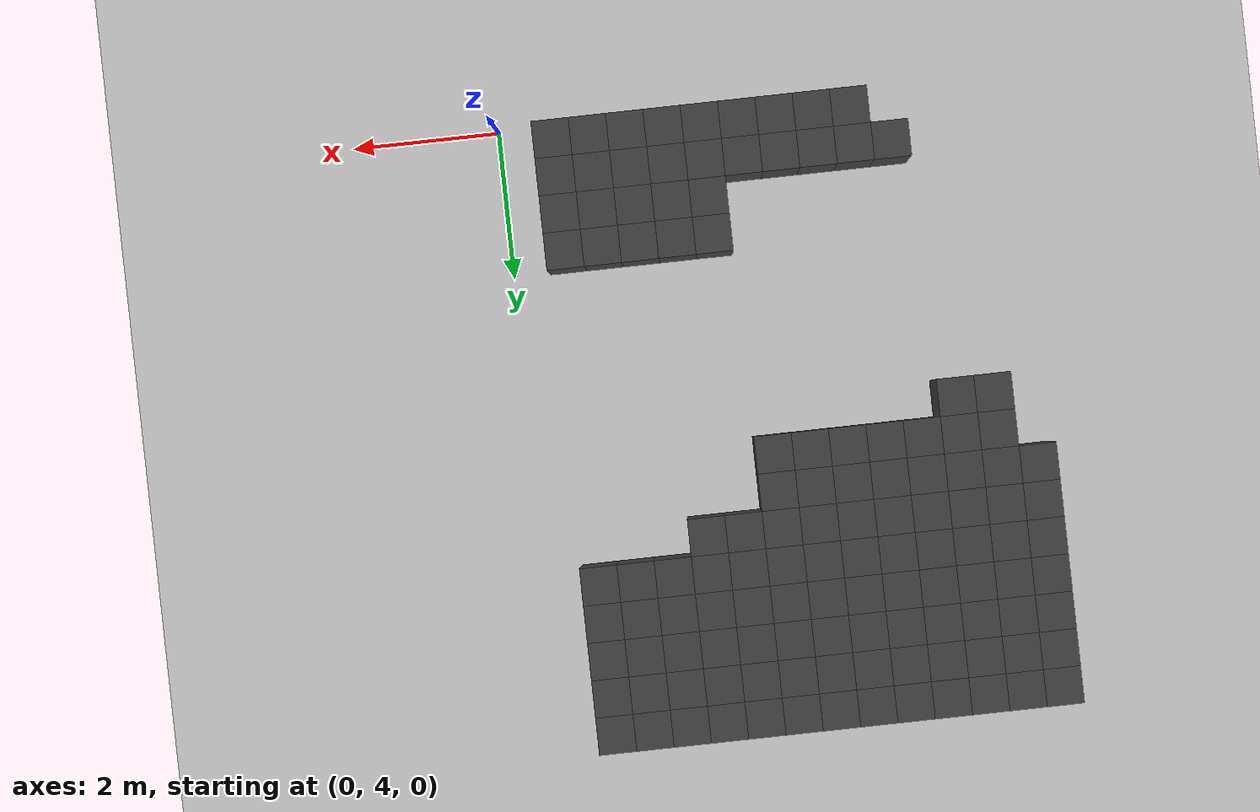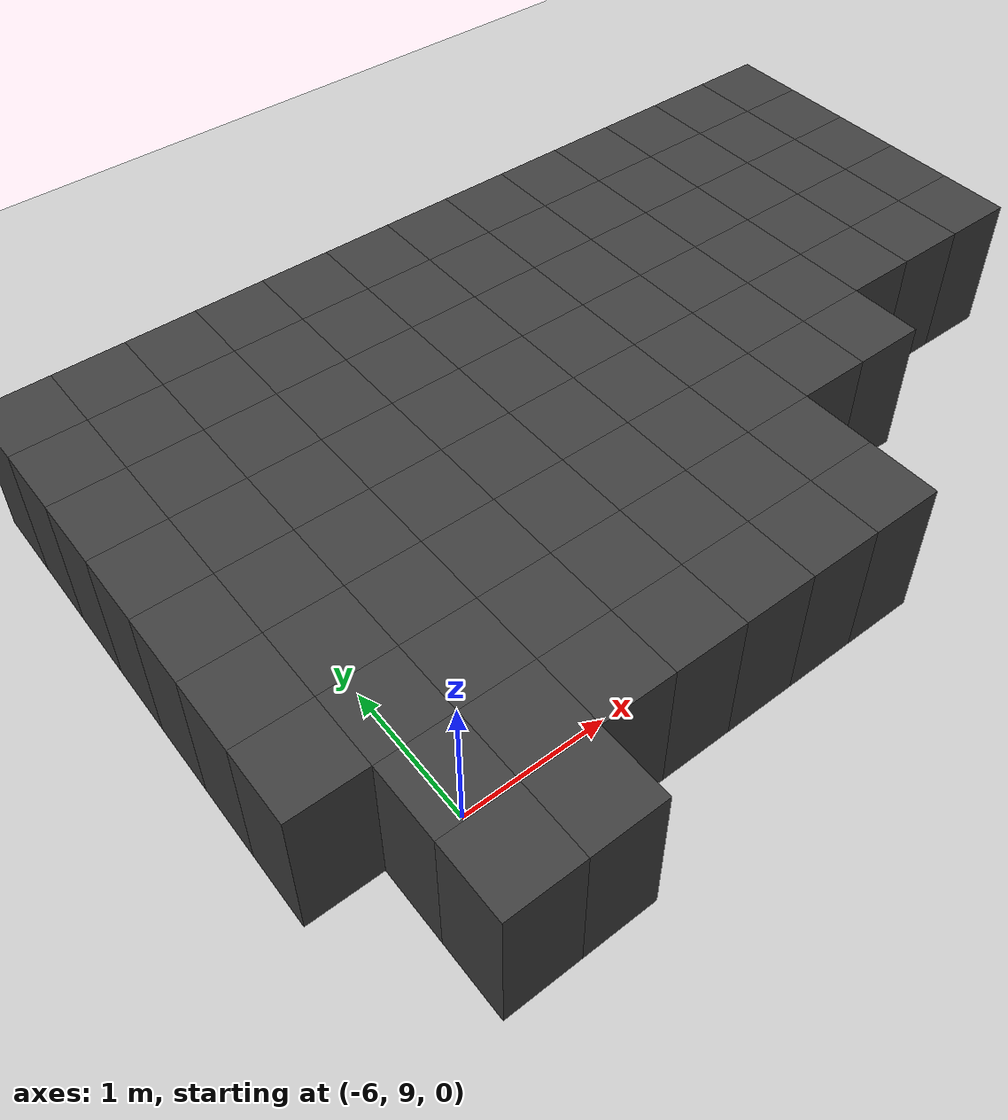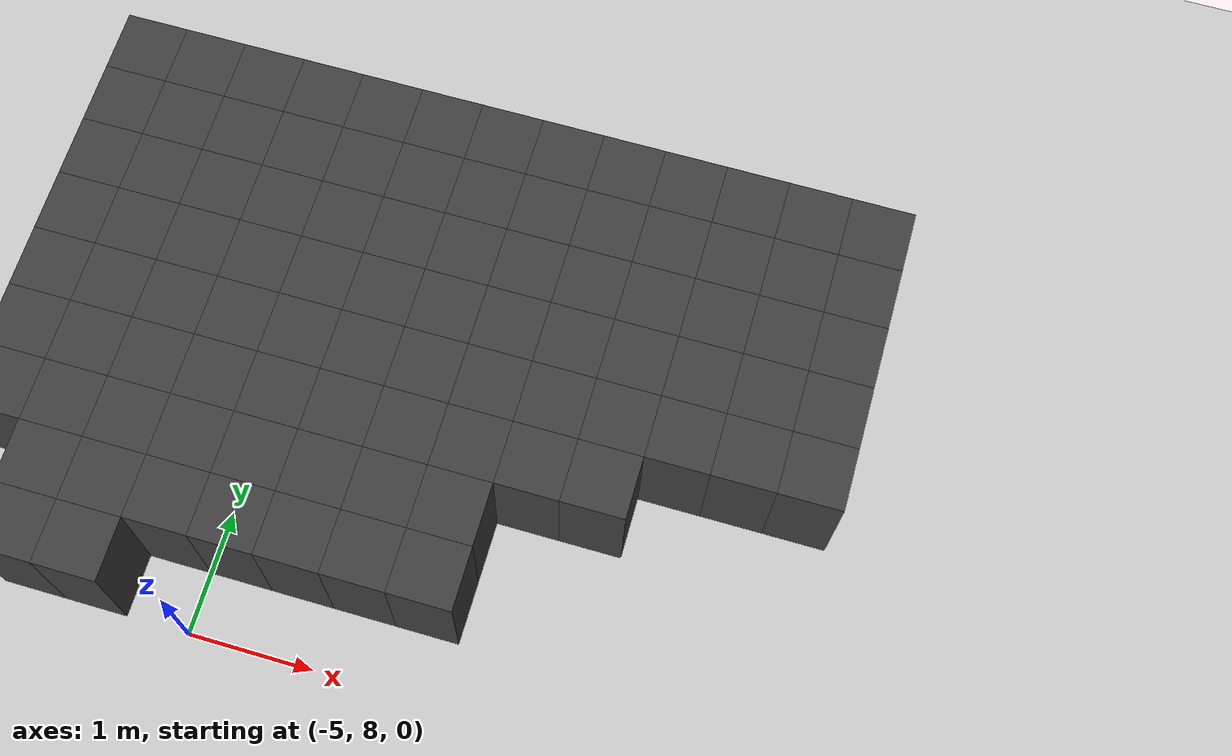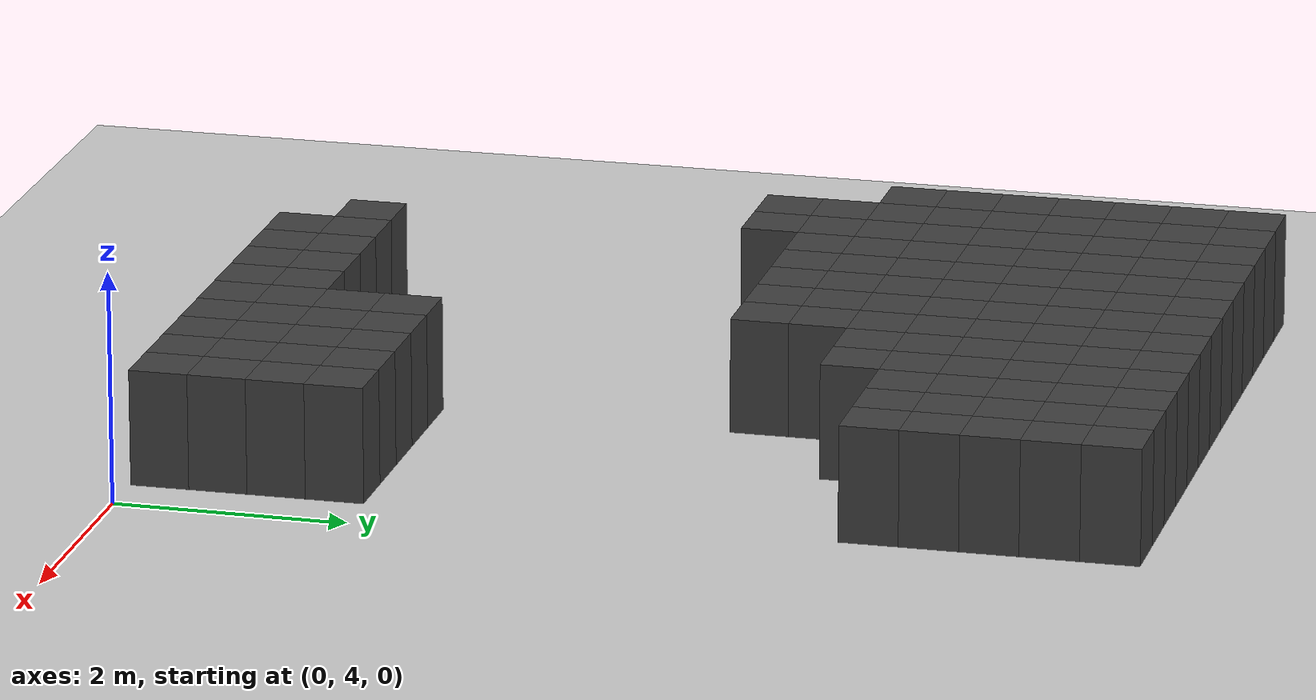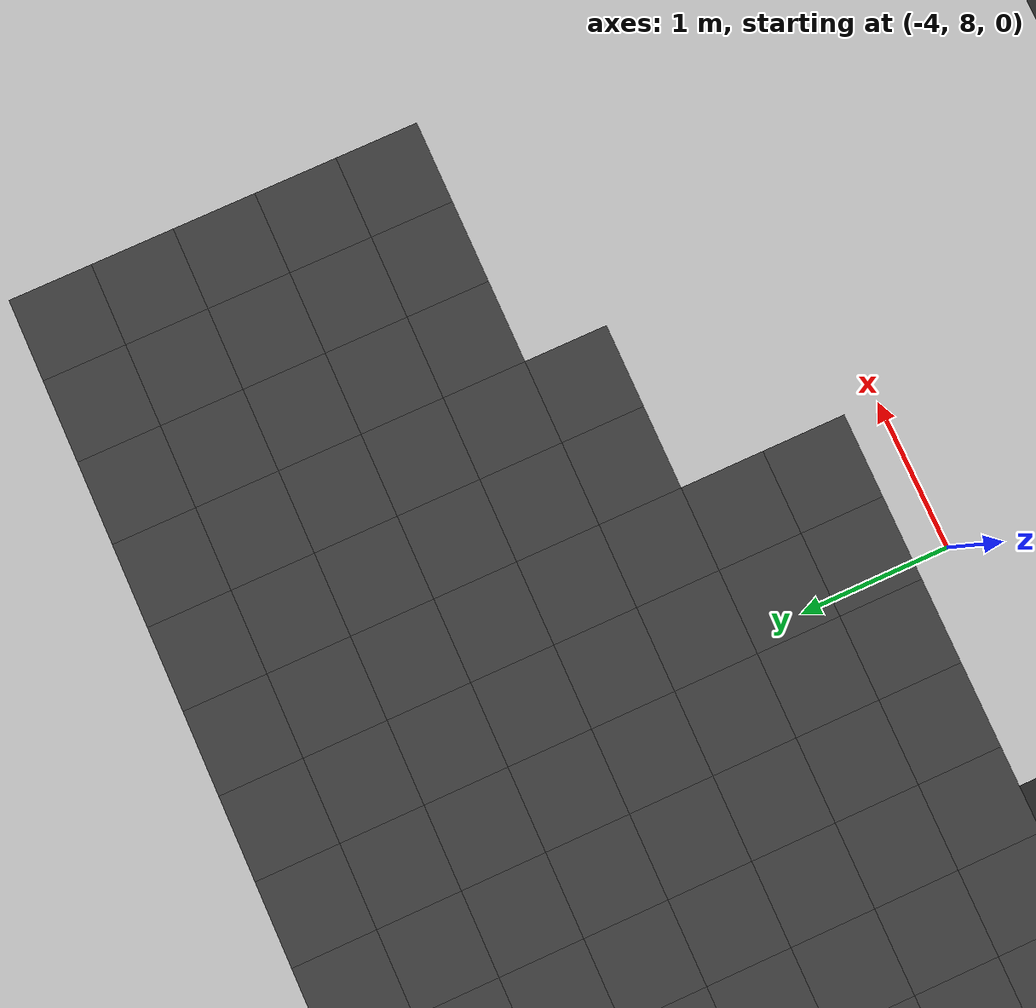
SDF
<sdf version="1.7">
 <world name="map_14706">
  <model name="ground_plane">
   <static>true</static>
   <link name="link">
    <collision name="collision">
     <geometry><plane><normal>0 0 1</normal><size>200 200</size></plane></geometry>
    </collision>
    <visual name="visual">
     <geometry><plane><normal>0 0 1</normal><size>200 200</size></plane></geometry>
     <material><ambient>0.8 0.8 0.8 1</ambient><diffuse>0.8 0.8 0.8 1</diffuse></material>
    </visual>
   </link>
  </model>
  <model name="maze_environment">
   <static>true</static>
   <link name="wall_11">
    <pose>-6.750 12.250 0.500 0 0 0</pose>
    <collision name="col"><geometry><box><size>0.5 0.5 1.0</size></box></geometry></collision>
    <visual name="vis">
     <geometry><box><size>0.5 0.5 1.0</size></box></geometry>
     <material><ambient>0.15 0.15 0.15 1</ambient><diffuse>0.25 0.25 0.25 1</diffuse></material>
    </visual>
   </link>
   <link name="wall_12">
    <pose>-6.250 12.250 0.500 0 0 0</pose>
    <collision name="col"><geometry><box><size>0.5 0.5 1.0</size></box></geometry></collision>
    <visual name="vis">
     <geometry><box><size>0.5 0.5 1.0</size></box></geometry>
     <material><ambient>0.15 0.15 0.15 1</ambient><diffuse>0.25 0.25 0.25 1</diffuse></material>
    </visual>
   </link>
   <link name="wall_13">
    <pose>-5.750 12.250 0.500 0 0 0</pose>
    <collision name="col"><geometry><box><size>0.5 0.5 1.0</size></box></geometry></collision>
    <visual name="vis">
     <geometry><box><size>0.5 0.5 1.0</size></box></geometry>
     <material><ambient>0.15 0.15 0.15 1</ambient><diffuse>0.25 0.25 0.25 1</diffuse></material>
    </visual>
   </link>
   <link name="wall_14">
    <pose>-5.250 12.250 0.500 0 0 0</pose>
    <collision name="col"><geometry><box><size>0.5 0.5 1.0</size></box></geometry></collision>
    <visual name="vis">
     <geometry><box><size>0.5 0.5 1.0</size></box></geometry>
     <material><ambient>0.15 0.15 0.15 1</ambient><diffuse>0.25 0.25 0.25 1</diffuse></material>
    </visual>
   </link>
   <link name="wall_15">
    <pose>-4.750 12.250 0.500 0 0 0</pose>
    <collision name="col"><geometry><box><size>0.5 0.5 1.0</size></box></geometry></collision>
    <visual name="vis">
     <geometry><box><size>0.5 0.5 1.0</size></box></geometry>
     <material><ambient>0.15 0.15 0.15 1</ambient><diffuse>0.25 0.25 0.25 1</diffuse></material>
    </visual>
   </link>
   <link name="wall_16">
    <pose>-4.250 12.250 0.500 0 0 0</pose>
    <collision name="col"><geometry><box><size>0.5 0.5 1.0</size></box></geometry></collision>
    <visual name="vis">
     <geometry><box><size>0.5 0.5 1.0</size></box></geometry>
     <material><ambient>0.15 0.15 0.15 1</ambient><diffuse>0.25 0.25 0.25 1</diffuse></material>
    </visual>
   </link>
   <link name="wall_17">
    <pose>-3.750 12.250 0.500 0 0 0</pose>
    <collision name="col"><geometry><box><size>0.5 0.5 1.0</size></box></geometry></collision>
    <visual name="vis">
     <geometry><box><size>0.5 0.5 1.0</size></box></geometry>
     <material><ambient>0.15 0.15 0.15 1</ambient><diffuse>0.25 0.25 0.25 1</diffuse></material>
    </visual>
   </link>
   <link name="wall_18">
    <pose>-3.250 12.250 0.500 0 0 0</pose>
    <collision name="col"><geometry><box><size>0.5 0.5 1.0</size></box></geometry></collision>
    <visual name="vis">
     <geometry><box><size>0.5 0.5 1.0</size></box></geometry>
     <material><ambient>0.15 0.15 0.15 1</ambient><diffuse>0.25 0.25 0.25 1</diffuse></material>
    </visual>
   </link>
   <link name="wall_19">
    <pose>-2.750 12.250 0.500 0 0 0</pose>
    <collision name="col"><geometry><box><size>0.5 0.5 1.0</size></box></geometry></collision>
    <visual name="vis">
     <geometry><box><size>0.5 0.5 1.0</size></box></geometry>
     <material><ambient>0.15 0.15 0.15 1</ambient><diffuse>0.25 0.25 0.25 1</diffuse></material>
    </visual>
   </link>
   <link name="wall_20">
    <pose>-2.250 12.250 0.500 0 0 0</pose>
    <collision name="col"><geometry><box><size>0.5 0.5 1.0</size></box></geometry></collision>
    <visual name="vis">
     <geometry><box><size>0.5 0.5 1.0</size></box></geometry>
     <material><ambient>0.15 0.15 0.15 1</ambient><diffuse>0.25 0.25 0.25 1</diffuse></material>
    </visual>
   </link>
   <link name="wall_21">
    <pose>-1.750 12.250 0.500 0 0 0</pose>
    <collision name="col"><geometry><box><size>0.5 0.5 1.0</size></box></geometry></collision>
    <visual name="vis">
     <geometry><box><size>0.5 0.5 1.0</size></box></geometry>
     <material><ambient>0.15 0.15 0.15 1</ambient><diffuse>0.25 0.25 0.25 1</diffuse></material>
    </visual>
   </link>
   <link name="wall_22">
    <pose>-1.250 12.250 0.500 0 0 0</pose>
    <collision name="col"><geometry><box><size>0.5 0.5 1.0</size></box></geometry></collision>
    <visual name="vis">
     <geometry><box><size>0.5 0.5 1.0</size></box></geometry>
     <material><ambient>0.15 0.15 0.15 1</ambient><diffuse>0.25 0.25 0.25 1</diffuse></material>
    </visual>
   </link>
   <link name="wall_23">
    <pose>-0.750 12.250 0.500 0 0 0</pose>
    <collision name="col"><geometry><box><size>0.5 0.5 1.0</size></box></geometry></collision>
    <visual name="vis">
     <geometry><box><size>0.5 0.5 1.0</size></box></geometry>
     <material><ambient>0.15 0.15 0.15 1</ambient><diffuse>0.25 0.25 0.25 1</diffuse></material>
    </visual>
   </link>
   <link name="wall_58">
    <pose>-6.750 11.750 0.500 0 0 0</pose>
    <collision name="col"><geometry><box><size>0.5 0.5 1.0</size></box></geometry></collision>
    <visual name="vis">
     <geometry><box><size>0.5 0.5 1.0</size></box></geometry>
     <material><ambient>0.15 0.15 0.15 1</ambient><diffuse>0.25 0.25 0.25 1</diffuse></material>
    </visual>
   </link>
   <link name="wall_59">
    <pose>-6.250 11.750 0.500 0 0 0</pose>
    <collision name="col"><geometry><box><size>0.5 0.5 1.0</size></box></geometry></collision>
    <visual name="vis">
     <geometry><box><size>0.5 0.5 1.0</size></box></geometry>
     <material><ambient>0.15 0.15 0.15 1</ambient><diffuse>0.25 0.25 0.25 1</diffuse></material>
    </visual>
   </link>
   <link name="wall_60">
    <pose>-5.750 11.750 0.500 0 0 0</pose>
    <collision name="col"><geometry><box><size>0.5 0.5 1.0</size></box></geometry></collision>
    <visual name="vis">
     <geometry><box><size>0.5 0.5 1.0</size></box></geometry>
     <material><ambient>0.15 0.15 0.15 1</ambient><diffuse>0.25 0.25 0.25 1</diffuse></material>
    </visual>
   </link>
   <link name="wall_61">
    <pose>-5.250 11.750 0.500 0 0 0</pose>
    <collision name="col"><geometry><box><size>0.5 0.5 1.0</size></box></geometry></collision>
    <visual name="vis">
     <geometry><box><size>0.5 0.5 1.0</size></box></geometry>
     <material><ambient>0.15 0.15 0.15 1</ambient><diffuse>0.25 0.25 0.25 1</diffuse></material>
    </visual>
   </link>
   <link name="wall_62">
    <pose>-4.750 11.750 0.500 0 0 0</pose>
    <collision name="col"><geometry><box><size>0.5 0.5 1.0</size></box></geometry></collision>
    <visual name="vis">
     <geometry><box><size>0.5 0.5 1.0</size></box></geometry>
     <material><ambient>0.15 0.15 0.15 1</ambient><diffuse>0.25 0.25 0.25 1</diffuse></material>
    </visual>
   </link>
   <link name="wall_63">
    <pose>-4.250 11.750 0.500 0 0 0</pose>
    <collision name="col"><geometry><box><size>0.5 0.5 1.0</size></box></geometry></collision>
    <visual name="vis">
     <geometry><box><size>0.5 0.5 1.0</size></box></geometry>
     <material><ambient>0.15 0.15 0.15 1</ambient><diffuse>0.25 0.25 0.25 1</diffuse></material>
    </visual>
   </link>
   <link name="wall_64">
    <pose>-3.750 11.750 0.500 0 0 0</pose>
    <collision name="col"><geometry><box><size>0.5 0.5 1.0</size></box></geometry></collision>
    <visual name="vis">
     <geometry><box><size>0.5 0.5 1.0</size></box></geometry>
     <material><ambient>0.15 0.15 0.15 1</ambient><diffuse>0.25 0.25 0.25 1</diffuse></material>
    </visual>
   </link>
   <link name="wall_65">
    <pose>-3.250 11.750 0.500 0 0 0</pose>
    <collision name="col"><geometry><box><size>0.5 0.5 1.0</size></box></geometry></collision>
    <visual name="vis">
     <geometry><box><size>0.5 0.5 1.0</size></box></geometry>
     <material><ambient>0.15 0.15 0.15 1</ambient><diffuse>0.25 0.25 0.25 1</diffuse></material>
    </visual>
   </link>
   <link name="wall_66">
    <pose>-2.750 11.750 0.500 0 0 0</pose>
    <collision name="col"><geometry><box><size>0.5 0.5 1.0</size></box></geometry></collision>
    <visual name="vis">
     <geometry><box><size>0.5 0.5 1.0</size></box></geometry>
     <material><ambient>0.15 0.15 0.15 1</ambient><diffuse>0.25 0.25 0.25 1</diffuse></material>
    </visual>
   </link>
   <link name="wall_67">
    <pose>-2.250 11.750 0.500 0 0 0</pose>
    <collision name="col"><geometry><box><size>0.5 0.5 1.0</size></box></geometry></collision>
    <visual name="vis">
     <geometry><box><size>0.5 0.5 1.0</size></box></geometry>
     <material><ambient>0.15 0.15 0.15 1</ambient><diffuse>0.25 0.25 0.25 1</diffuse></material>
    </visual>
   </link>
   <link name="wall_68">
    <pose>-1.750 11.750 0.500 0 0 0</pose>
    <collision name="col"><geometry><box><size>0.5 0.5 1.0</size></box></geometry></collision>
    <visual name="vis">
     <geometry><box><size>0.5 0.5 1.0</size></box></geometry>
     <material><ambient>0.15 0.15 0.15 1</ambient><diffuse>0.25 0.25 0.25 1</diffuse></material>
    </visual>
   </link>
   <link name="wall_69">
    <pose>-1.250 11.750 0.500 0 0 0</pose>
    <collision name="col"><geometry><box><size>0.5 0.5 1.0</size></box></geometry></collision>
    <visual name="vis">
     <geometry><box><size>0.5 0.5 1.0</size></box></geometry>
     <material><ambient>0.15 0.15 0.15 1</ambient><diffuse>0.25 0.25 0.25 1</diffuse></material>
    </visual>
   </link>
   <link name="wall_70">
    <pose>-0.750 11.750 0.500 0 0 0</pose>
    <collision name="col"><geometry><box><size>0.5 0.5 1.0</size></box></geometry></collision>
    <visual name="vis">
     <geometry><box><size>0.5 0.5 1.0</size></box></geometry>
     <material><ambient>0.15 0.15 0.15 1</ambient><diffuse>0.25 0.25 0.25 1</diffuse></material>
    </visual>
   </link>
   <link name="wall_97">
    <pose>-6.750 11.250 0.500 0 0 0</pose>
    <collision name="col"><geometry><box><size>0.5 0.5 1.0</size></box></geometry></collision>
    <visual name="vis">
     <geometry><box><size>0.5 0.5 1.0</size></box></geometry>
     <material><ambient>0.15 0.15 0.15 1</ambient><diffuse>0.25 0.25 0.25 1</diffuse></material>
    </visual>
   </link>
   <link name="wall_98">
    <pose>-6.250 11.250 0.500 0 0 0</pose>
    <collision name="col"><geometry><box><size>0.5 0.5 1.0</size></box></geometry></collision>
    <visual name="vis">
     <geometry><box><size>0.5 0.5 1.0</size></box></geometry>
     <material><ambient>0.15 0.15 0.15 1</ambient><diffuse>0.25 0.25 0.25 1</diffuse></material>
    </visual>
   </link>
   <link name="wall_99">
    <pose>-5.750 11.250 0.500 0 0 0</pose>
    <collision name="col"><geometry><box><size>0.5 0.5 1.0</size></box></geometry></collision>
    <visual name="vis">
     <geometry><box><size>0.5 0.5 1.0</size></box></geometry>
     <material><ambient>0.15 0.15 0.15 1</ambient><diffuse>0.25 0.25 0.25 1</diffuse></material>
    </visual>
   </link>
   <link name="wall_100">
    <pose>-5.250 11.250 0.500 0 0 0</pose>
    <collision name="col"><geometry><box><size>0.5 0.5 1.0</size></box></geometry></collision>
    <visual name="vis">
     <geometry><box><size>0.5 0.5 1.0</size></box></geometry>
     <material><ambient>0.15 0.15 0.15 1</ambient><diffuse>0.25 0.25 0.25 1</diffuse></material>
    </visual>
   </link>
   <link name="wall_101">
    <pose>-4.750 11.250 0.500 0 0 0</pose>
    <collision name="col"><geometry><box><size>0.5 0.5 1.0</size></box></geometry></collision>
    <visual name="vis">
     <geometry><box><size>0.5 0.5 1.0</size></box></geometry>
     <material><ambient>0.15 0.15 0.15 1</ambient><diffuse>0.25 0.25 0.25 1</diffuse></material>
    </visual>
   </link>
   <link name="wall_102">
    <pose>-4.250 11.250 0.500 0 0 0</pose>
    <collision name="col"><geometry><box><size>0.5 0.5 1.0</size></box></geometry></collision>
    <visual name="vis">
     <geometry><box><size>0.5 0.5 1.0</size></box></geometry>
     <material><ambient>0.15 0.15 0.15 1</ambient><diffuse>0.25 0.25 0.25 1</diffuse></material>
    </visual>
   </link>
   <link name="wall_103">
    <pose>-3.750 11.250 0.500 0 0 0</pose>
    <collision name="col"><geometry><box><size>0.5 0.5 1.0</size></box></geometry></collision>
    <visual name="vis">
     <geometry><box><size>0.5 0.5 1.0</size></box></geometry>
     <material><ambient>0.15 0.15 0.15 1</ambient><diffuse>0.25 0.25 0.25 1</diffuse></material>
    </visual>
   </link>
   <link name="wall_104">
    <pose>-3.250 11.250 0.500 0 0 0</pose>
    <collision name="col"><geometry><box><size>0.5 0.5 1.0</size></box></geometry></collision>
    <visual name="vis">
     <geometry><box><size>0.5 0.5 1.0</size></box></geometry>
     <material><ambient>0.15 0.15 0.15 1</ambient><diffuse>0.25 0.25 0.25 1</diffuse></material>
    </visual>
   </link>
   <link name="wall_105">
    <pose>-2.750 11.250 0.500 0 0 0</pose>
    <collision name="col"><geometry><box><size>0.5 0.5 1.0</size></box></geometry></collision>
    <visual name="vis">
     <geometry><box><size>0.5 0.5 1.0</size></box></geometry>
     <material><ambient>0.15 0.15 0.15 1</ambient><diffuse>0.25 0.25 0.25 1</diffuse></material>
    </visual>
   </link>
   <link name="wall_106">
    <pose>-2.250 11.250 0.500 0 0 0</pose>
    <collision name="col"><geometry><box><size>0.5 0.5 1.0</size></box></geometry></collision>
    <visual name="vis">
     <geometry><box><size>0.5 0.5 1.0</size></box></geometry>
     <material><ambient>0.15 0.15 0.15 1</ambient><diffuse>0.25 0.25 0.25 1</diffuse></material>
    </visual>
   </link>
   <link name="wall_107">
    <pose>-1.750 11.250 0.500 0 0 0</pose>
    <collision name="col"><geometry><box><size>0.5 0.5 1.0</size></box></geometry></collision>
    <visual name="vis">
     <geometry><box><size>0.5 0.5 1.0</size></box></geometry>
     <material><ambient>0.15 0.15 0.15 1</ambient><diffuse>0.25 0.25 0.25 1</diffuse></material>
    </visual>
   </link>
   <link name="wall_108">
    <pose>-1.250 11.250 0.500 0 0 0</pose>
    <collision name="col"><geometry><box><size>0.5 0.5 1.0</size></box></geometry></collision>
    <visual name="vis">
     <geometry><box><size>0.5 0.5 1.0</size></box></geometry>
     <material><ambient>0.15 0.15 0.15 1</ambient><diffuse>0.25 0.25 0.25 1</diffuse></material>
    </visual>
   </link>
   <link name="wall_109">
    <pose>-0.750 11.250 0.500 0 0 0</pose>
    <collision name="col"><geometry><box><size>0.5 0.5 1.0</size></box></geometry></collision>
    <visual name="vis">
     <geometry><box><size>0.5 0.5 1.0</size></box></geometry>
     <material><ambient>0.15 0.15 0.15 1</ambient><diffuse>0.25 0.25 0.25 1</diffuse></material>
    </visual>
   </link>
   <link name="wall_136">
    <pose>-6.750 10.750 0.500 0 0 0</pose>
    <collision name="col"><geometry><box><size>0.5 0.5 1.0</size></box></geometry></collision>
    <visual name="vis">
     <geometry><box><size>0.5 0.5 1.0</size></box></geometry>
     <material><ambient>0.15 0.15 0.15 1</ambient><diffuse>0.25 0.25 0.25 1</diffuse></material>
    </visual>
   </link>
   <link name="wall_137">
    <pose>-6.250 10.750 0.500 0 0 0</pose>
    <collision name="col"><geometry><box><size>0.5 0.5 1.0</size></box></geometry></collision>
    <visual name="vis">
     <geometry><box><size>0.5 0.5 1.0</size></box></geometry>
     <material><ambient>0.15 0.15 0.15 1</ambient><diffuse>0.25 0.25 0.25 1</diffuse></material>
    </visual>
   </link>
   <link name="wall_138">
    <pose>-5.750 10.750 0.500 0 0 0</pose>
    <collision name="col"><geometry><box><size>0.5 0.5 1.0</size></box></geometry></collision>
    <visual name="vis">
     <geometry><box><size>0.5 0.5 1.0</size></box></geometry>
     <material><ambient>0.15 0.15 0.15 1</ambient><diffuse>0.25 0.25 0.25 1</diffuse></material>
    </visual>
   </link>
   <link name="wall_139">
    <pose>-5.250 10.750 0.500 0 0 0</pose>
    <collision name="col"><geometry><box><size>0.5 0.5 1.0</size></box></geometry></collision>
    <visual name="vis">
     <geometry><box><size>0.5 0.5 1.0</size></box></geometry>
     <material><ambient>0.15 0.15 0.15 1</ambient><diffuse>0.25 0.25 0.25 1</diffuse></material>
    </visual>
   </link>
   <link name="wall_140">
    <pose>-4.750 10.750 0.500 0 0 0</pose>
    <collision name="col"><geometry><box><size>0.5 0.5 1.0</size></box></geometry></collision>
    <visual name="vis">
     <geometry><box><size>0.5 0.5 1.0</size></box></geometry>
     <material><ambient>0.15 0.15 0.15 1</ambient><diffuse>0.25 0.25 0.25 1</diffuse></material>
    </visual>
   </link>
   <link name="wall_141">
    <pose>-4.250 10.750 0.500 0 0 0</pose>
    <collision name="col"><geometry><box><size>0.5 0.5 1.0</size></box></geometry></collision>
    <visual name="vis">
     <geometry><box><size>0.5 0.5 1.0</size></box></geometry>
     <material><ambient>0.15 0.15 0.15 1</ambient><diffuse>0.25 0.25 0.25 1</diffuse></material>
    </visual>
   </link>
   <link name="wall_142">
    <pose>-3.750 10.750 0.500 0 0 0</pose>
    <collision name="col"><geometry><box><size>0.5 0.5 1.0</size></box></geometry></collision>
    <visual name="vis">
     <geometry><box><size>0.5 0.5 1.0</size></box></geometry>
     <material><ambient>0.15 0.15 0.15 1</ambient><diffuse>0.25 0.25 0.25 1</diffuse></material>
    </visual>
   </link>
   <link name="wall_143">
    <pose>-3.250 10.750 0.500 0 0 0</pose>
    <collision name="col"><geometry><box><size>0.5 0.5 1.0</size></box></geometry></collision>
    <visual name="vis">
     <geometry><box><size>0.5 0.5 1.0</size></box></geometry>
     <material><ambient>0.15 0.15 0.15 1</ambient><diffuse>0.25 0.25 0.25 1</diffuse></material>
    </visual>
   </link>
   <link name="wall_144">
    <pose>-2.750 10.750 0.500 0 0 0</pose>
    <collision name="col"><geometry><box><size>0.5 0.5 1.0</size></box></geometry></collision>
    <visual name="vis">
     <geometry><box><size>0.5 0.5 1.0</size></box></geometry>
     <material><ambient>0.15 0.15 0.15 1</ambient><diffuse>0.25 0.25 0.25 1</diffuse></material>
    </visual>
   </link>
   <link name="wall_145">
    <pose>-2.250 10.750 0.500 0 0 0</pose>
    <collision name="col"><geometry><box><size>0.5 0.5 1.0</size></box></geometry></collision>
    <visual name="vis">
     <geometry><box><size>0.5 0.5 1.0</size></box></geometry>
     <material><ambient>0.15 0.15 0.15 1</ambient><diffuse>0.25 0.25 0.25 1</diffuse></material>
    </visual>
   </link>
   <link name="wall_146">
    <pose>-1.750 10.750 0.500 0 0 0</pose>
    <collision name="col"><geometry><box><size>0.5 0.5 1.0</size></box></geometry></collision>
    <visual name="vis">
     <geometry><box><size>0.5 0.5 1.0</size></box></geometry>
     <material><ambient>0.15 0.15 0.15 1</ambient><diffuse>0.25 0.25 0.25 1</diffuse></material>
    </visual>
   </link>
   <link name="wall_147">
    <pose>-1.250 10.750 0.500 0 0 0</pose>
    <collision name="col"><geometry><box><size>0.5 0.5 1.0</size></box></geometry></collision>
    <visual name="vis">
     <geometry><box><size>0.5 0.5 1.0</size></box></geometry>
     <material><ambient>0.15 0.15 0.15 1</ambient><diffuse>0.25 0.25 0.25 1</diffuse></material>
    </visual>
   </link>
   <link name="wall_148">
    <pose>-0.750 10.750 0.500 0 0 0</pose>
    <collision name="col"><geometry><box><size>0.5 0.5 1.0</size></box></geometry></collision>
    <visual name="vis">
     <geometry><box><size>0.5 0.5 1.0</size></box></geometry>
     <material><ambient>0.15 0.15 0.15 1</ambient><diffuse>0.25 0.25 0.25 1</diffuse></material>
    </visual>
   </link>
   <link name="wall_167">
    <pose>-6.750 10.250 0.500 0 0 0</pose>
    <collision name="col"><geometry><box><size>0.5 0.5 1.0</size></box></geometry></collision>
    <visual name="vis">
     <geometry><box><size>0.5 0.5 1.0</size></box></geometry>
     <material><ambient>0.15 0.15 0.15 1</ambient><diffuse>0.25 0.25 0.25 1</diffuse></material>
    </visual>
   </link>
   <link name="wall_168">
    <pose>-6.250 10.250 0.500 0 0 0</pose>
    <collision name="col"><geometry><box><size>0.5 0.5 1.0</size></box></geometry></collision>
    <visual name="vis">
     <geometry><box><size>0.5 0.5 1.0</size></box></geometry>
     <material><ambient>0.15 0.15 0.15 1</ambient><diffuse>0.25 0.25 0.25 1</diffuse></material>
    </visual>
   </link>
   <link name="wall_169">
    <pose>-5.750 10.250 0.500 0 0 0</pose>
    <collision name="col"><geometry><box><size>0.5 0.5 1.0</size></box></geometry></collision>
    <visual name="vis">
     <geometry><box><size>0.5 0.5 1.0</size></box></geometry>
     <material><ambient>0.15 0.15 0.15 1</ambient><diffuse>0.25 0.25 0.25 1</diffuse></material>
    </visual>
   </link>
   <link name="wall_170">
    <pose>-5.250 10.250 0.500 0 0 0</pose>
    <collision name="col"><geometry><box><size>0.5 0.5 1.0</size></box></geometry></collision>
    <visual name="vis">
     <geometry><box><size>0.5 0.5 1.0</size></box></geometry>
     <material><ambient>0.15 0.15 0.15 1</ambient><diffuse>0.25 0.25 0.25 1</diffuse></material>
    </visual>
   </link>
   <link name="wall_171">
    <pose>-4.750 10.250 0.500 0 0 0</pose>
    <collision name="col"><geometry><box><size>0.5 0.5 1.0</size></box></geometry></collision>
    <visual name="vis">
     <geometry><box><size>0.5 0.5 1.0</size></box></geometry>
     <material><ambient>0.15 0.15 0.15 1</ambient><diffuse>0.25 0.25 0.25 1</diffuse></material>
    </visual>
   </link>
   <link name="wall_172">
    <pose>-4.250 10.250 0.500 0 0 0</pose>
    <collision name="col"><geometry><box><size>0.5 0.5 1.0</size></box></geometry></collision>
    <visual name="vis">
     <geometry><box><size>0.5 0.5 1.0</size></box></geometry>
     <material><ambient>0.15 0.15 0.15 1</ambient><diffuse>0.25 0.25 0.25 1</diffuse></material>
    </visual>
   </link>
   <link name="wall_173">
    <pose>-3.750 10.250 0.500 0 0 0</pose>
    <collision name="col"><geometry><box><size>0.5 0.5 1.0</size></box></geometry></collision>
    <visual name="vis">
     <geometry><box><size>0.5 0.5 1.0</size></box></geometry>
     <material><ambient>0.15 0.15 0.15 1</ambient><diffuse>0.25 0.25 0.25 1</diffuse></material>
    </visual>
   </link>
   <link name="wall_174">
    <pose>-3.250 10.250 0.500 0 0 0</pose>
    <collision name="col"><geometry><box><size>0.5 0.5 1.0</size></box></geometry></collision>
    <visual name="vis">
     <geometry><box><size>0.5 0.5 1.0</size></box></geometry>
     <material><ambient>0.15 0.15 0.15 1</ambient><diffuse>0.25 0.25 0.25 1</diffuse></material>
    </visual>
   </link>
   <link name="wall_175">
    <pose>-2.750 10.250 0.500 0 0 0</pose>
    <collision name="col"><geometry><box><size>0.5 0.5 1.0</size></box></geometry></collision>
    <visual name="vis">
     <geometry><box><size>0.5 0.5 1.0</size></box></geometry>
     <material><ambient>0.15 0.15 0.15 1</ambient><diffuse>0.25 0.25 0.25 1</diffuse></material>
    </visual>
   </link>
   <link name="wall_176">
    <pose>-2.250 10.250 0.500 0 0 0</pose>
    <collision name="col"><geometry><box><size>0.5 0.5 1.0</size></box></geometry></collision>
    <visual name="vis">
     <geometry><box><size>0.5 0.5 1.0</size></box></geometry>
     <material><ambient>0.15 0.15 0.15 1</ambient><diffuse>0.25 0.25 0.25 1</diffuse></material>
    </visual>
   </link>
   <link name="wall_177">
    <pose>-1.750 10.250 0.500 0 0 0</pose>
    <collision name="col"><geometry><box><size>0.5 0.5 1.0</size></box></geometry></collision>
    <visual name="vis">
     <geometry><box><size>0.5 0.5 1.0</size></box></geometry>
     <material><ambient>0.15 0.15 0.15 1</ambient><diffuse>0.25 0.25 0.25 1</diffuse></material>
    </visual>
   </link>
   <link name="wall_178">
    <pose>-1.250 10.250 0.500 0 0 0</pose>
    <collision name="col"><geometry><box><size>0.5 0.5 1.0</size></box></geometry></collision>
    <visual name="vis">
     <geometry><box><size>0.5 0.5 1.0</size></box></geometry>
     <material><ambient>0.15 0.15 0.15 1</ambient><diffuse>0.25 0.25 0.25 1</diffuse></material>
    </visual>
   </link>
   <link name="wall_179">
    <pose>-0.750 10.250 0.500 0 0 0</pose>
    <collision name="col"><geometry><box><size>0.5 0.5 1.0</size></box></geometry></collision>
    <visual name="vis">
     <geometry><box><size>0.5 0.5 1.0</size></box></geometry>
     <material><ambient>0.15 0.15 0.15 1</ambient><diffuse>0.25 0.25 0.25 1</diffuse></material>
    </visual>
   </link>
   <link name="wall_195">
    <pose>-6.750 9.750 0.500 0 0 0</pose>
    <collision name="col"><geometry><box><size>0.5 0.5 1.0</size></box></geometry></collision>
    <visual name="vis">
     <geometry><box><size>0.5 0.5 1.0</size></box></geometry>
     <material><ambient>0.15 0.15 0.15 1</ambient><diffuse>0.25 0.25 0.25 1</diffuse></material>
    </visual>
   </link>
   <link name="wall_196">
    <pose>-6.250 9.750 0.500 0 0 0</pose>
    <collision name="col"><geometry><box><size>0.5 0.5 1.0</size></box></geometry></collision>
    <visual name="vis">
     <geometry><box><size>0.5 0.5 1.0</size></box></geometry>
     <material><ambient>0.15 0.15 0.15 1</ambient><diffuse>0.25 0.25 0.25 1</diffuse></material>
    </visual>
   </link>
   <link name="wall_197">
    <pose>-5.750 9.750 0.500 0 0 0</pose>
    <collision name="col"><geometry><box><size>0.5 0.5 1.0</size></box></geometry></collision>
    <visual name="vis">
     <geometry><box><size>0.5 0.5 1.0</size></box></geometry>
     <material><ambient>0.15 0.15 0.15 1</ambient><diffuse>0.25 0.25 0.25 1</diffuse></material>
    </visual>
   </link>
   <link name="wall_198">
    <pose>-5.250 9.750 0.500 0 0 0</pose>
    <collision name="col"><geometry><box><size>0.5 0.5 1.0</size></box></geometry></collision>
    <visual name="vis">
     <geometry><box><size>0.5 0.5 1.0</size></box></geometry>
     <material><ambient>0.15 0.15 0.15 1</ambient><diffuse>0.25 0.25 0.25 1</diffuse></material>
    </visual>
   </link>
   <link name="wall_199">
    <pose>-4.750 9.750 0.500 0 0 0</pose>
    <collision name="col"><geometry><box><size>0.5 0.5 1.0</size></box></geometry></collision>
    <visual name="vis">
     <geometry><box><size>0.5 0.5 1.0</size></box></geometry>
     <material><ambient>0.15 0.15 0.15 1</ambient><diffuse>0.25 0.25 0.25 1</diffuse></material>
    </visual>
   </link>
   <link name="wall_200">
    <pose>-4.250 9.750 0.500 0 0 0</pose>
    <collision name="col"><geometry><box><size>0.5 0.5 1.0</size></box></geometry></collision>
    <visual name="vis">
     <geometry><box><size>0.5 0.5 1.0</size></box></geometry>
     <material><ambient>0.15 0.15 0.15 1</ambient><diffuse>0.25 0.25 0.25 1</diffuse></material>
    </visual>
   </link>
   <link name="wall_201">
    <pose>-3.750 9.750 0.500 0 0 0</pose>
    <collision name="col"><geometry><box><size>0.5 0.5 1.0</size></box></geometry></collision>
    <visual name="vis">
     <geometry><box><size>0.5 0.5 1.0</size></box></geometry>
     <material><ambient>0.15 0.15 0.15 1</ambient><diffuse>0.25 0.25 0.25 1</diffuse></material>
    </visual>
   </link>
   <link name="wall_202">
    <pose>-3.250 9.750 0.500 0 0 0</pose>
    <collision name="col"><geometry><box><size>0.5 0.5 1.0</size></box></geometry></collision>
    <visual name="vis">
     <geometry><box><size>0.5 0.5 1.0</size></box></geometry>
     <material><ambient>0.15 0.15 0.15 1</ambient><diffuse>0.25 0.25 0.25 1</diffuse></material>
    </visual>
   </link>
   <link name="wall_203">
    <pose>-2.750 9.750 0.500 0 0 0</pose>
    <collision name="col"><geometry><box><size>0.5 0.5 1.0</size></box></geometry></collision>
    <visual name="vis">
     <geometry><box><size>0.5 0.5 1.0</size></box></geometry>
     <material><ambient>0.15 0.15 0.15 1</ambient><diffuse>0.25 0.25 0.25 1</diffuse></material>
    </visual>
   </link>
   <link name="wall_204">
    <pose>-2.250 9.750 0.500 0 0 0</pose>
    <collision name="col"><geometry><box><size>0.5 0.5 1.0</size></box></geometry></collision>
    <visual name="vis">
     <geometry><box><size>0.5 0.5 1.0</size></box></geometry>
     <material><ambient>0.15 0.15 0.15 1</ambient><diffuse>0.25 0.25 0.25 1</diffuse></material>
    </visual>
   </link>
   <link name="wall_220">
    <pose>-6.750 9.250 0.500 0 0 0</pose>
    <collision name="col"><geometry><box><size>0.5 0.5 1.0</size></box></geometry></collision>
    <visual name="vis">
     <geometry><box><size>0.5 0.5 1.0</size></box></geometry>
     <material><ambient>0.15 0.15 0.15 1</ambient><diffuse>0.25 0.25 0.25 1</diffuse></material>
    </visual>
   </link>
   <link name="wall_221">
    <pose>-6.250 9.250 0.500 0 0 0</pose>
    <collision name="col"><geometry><box><size>0.5 0.5 1.0</size></box></geometry></collision>
    <visual name="vis">
     <geometry><box><size>0.5 0.5 1.0</size></box></geometry>
     <material><ambient>0.15 0.15 0.15 1</ambient><diffuse>0.25 0.25 0.25 1</diffuse></material>
    </visual>
   </link>
   <link name="wall_222">
    <pose>-5.750 9.250 0.500 0 0 0</pose>
    <collision name="col"><geometry><box><size>0.5 0.5 1.0</size></box></geometry></collision>
    <visual name="vis">
     <geometry><box><size>0.5 0.5 1.0</size></box></geometry>
     <material><ambient>0.15 0.15 0.15 1</ambient><diffuse>0.25 0.25 0.25 1</diffuse></material>
    </visual>
   </link>
   <link name="wall_223">
    <pose>-5.250 9.250 0.500 0 0 0</pose>
    <collision name="col"><geometry><box><size>0.5 0.5 1.0</size></box></geometry></collision>
    <visual name="vis">
     <geometry><box><size>0.5 0.5 1.0</size></box></geometry>
     <material><ambient>0.15 0.15 0.15 1</ambient><diffuse>0.25 0.25 0.25 1</diffuse></material>
    </visual>
   </link>
   <link name="wall_224">
    <pose>-4.750 9.250 0.500 0 0 0</pose>
    <collision name="col"><geometry><box><size>0.5 0.5 1.0</size></box></geometry></collision>
    <visual name="vis">
     <geometry><box><size>0.5 0.5 1.0</size></box></geometry>
     <material><ambient>0.15 0.15 0.15 1</ambient><diffuse>0.25 0.25 0.25 1</diffuse></material>
    </visual>
   </link>
   <link name="wall_225">
    <pose>-4.250 9.250 0.500 0 0 0</pose>
    <collision name="col"><geometry><box><size>0.5 0.5 1.0</size></box></geometry></collision>
    <visual name="vis">
     <geometry><box><size>0.5 0.5 1.0</size></box></geometry>
     <material><ambient>0.15 0.15 0.15 1</ambient><diffuse>0.25 0.25 0.25 1</diffuse></material>
    </visual>
   </link>
   <link name="wall_226">
    <pose>-3.750 9.250 0.500 0 0 0</pose>
    <collision name="col"><geometry><box><size>0.5 0.5 1.0</size></box></geometry></collision>
    <visual name="vis">
     <geometry><box><size>0.5 0.5 1.0</size></box></geometry>
     <material><ambient>0.15 0.15 0.15 1</ambient><diffuse>0.25 0.25 0.25 1</diffuse></material>
    </visual>
   </link>
   <link name="wall_227">
    <pose>-3.250 9.250 0.500 0 0 0</pose>
    <collision name="col"><geometry><box><size>0.5 0.5 1.0</size></box></geometry></collision>
    <visual name="vis">
     <geometry><box><size>0.5 0.5 1.0</size></box></geometry>
     <material><ambient>0.15 0.15 0.15 1</ambient><diffuse>0.25 0.25 0.25 1</diffuse></material>
    </visual>
   </link>
   <link name="wall_243">
    <pose>-6.250 8.750 0.500 0 0 0</pose>
    <collision name="col"><geometry><box><size>0.5 0.5 1.0</size></box></geometry></collision>
    <visual name="vis">
     <geometry><box><size>0.5 0.5 1.0</size></box></geometry>
     <material><ambient>0.15 0.15 0.15 1</ambient><diffuse>0.25 0.25 0.25 1</diffuse></material>
    </visual>
   </link>
   <link name="wall_244">
    <pose>-5.750 8.750 0.500 0 0 0</pose>
    <collision name="col"><geometry><box><size>0.5 0.5 1.0</size></box></geometry></collision>
    <visual name="vis">
     <geometry><box><size>0.5 0.5 1.0</size></box></geometry>
     <material><ambient>0.15 0.15 0.15 1</ambient><diffuse>0.25 0.25 0.25 1</diffuse></material>
    </visual>
   </link>
   <link name="wall_245">
    <pose>-5.250 8.750 0.500 0 0 0</pose>
    <collision name="col"><geometry><box><size>0.5 0.5 1.0</size></box></geometry></collision>
    <visual name="vis">
     <geometry><box><size>0.5 0.5 1.0</size></box></geometry>
     <material><ambient>0.15 0.15 0.15 1</ambient><diffuse>0.25 0.25 0.25 1</diffuse></material>
    </visual>
   </link>
   <link name="wall_246">
    <pose>-4.750 8.750 0.500 0 0 0</pose>
    <collision name="col"><geometry><box><size>0.5 0.5 1.0</size></box></geometry></collision>
    <visual name="vis">
     <geometry><box><size>0.5 0.5 1.0</size></box></geometry>
     <material><ambient>0.15 0.15 0.15 1</ambient><diffuse>0.25 0.25 0.25 1</diffuse></material>
    </visual>
   </link>
   <link name="wall_247">
    <pose>-4.250 8.750 0.500 0 0 0</pose>
    <collision name="col"><geometry><box><size>0.5 0.5 1.0</size></box></geometry></collision>
    <visual name="vis">
     <geometry><box><size>0.5 0.5 1.0</size></box></geometry>
     <material><ambient>0.15 0.15 0.15 1</ambient><diffuse>0.25 0.25 0.25 1</diffuse></material>
    </visual>
   </link>
   <link name="wall_248">
    <pose>-3.750 8.750 0.500 0 0 0</pose>
    <collision name="col"><geometry><box><size>0.5 0.5 1.0</size></box></geometry></collision>
    <visual name="vis">
     <geometry><box><size>0.5 0.5 1.0</size></box></geometry>
     <material><ambient>0.15 0.15 0.15 1</ambient><diffuse>0.25 0.25 0.25 1</diffuse></material>
    </visual>
   </link>
   <link name="wall_249">
    <pose>-3.250 8.750 0.500 0 0 0</pose>
    <collision name="col"><geometry><box><size>0.5 0.5 1.0</size></box></geometry></collision>
    <visual name="vis">
     <geometry><box><size>0.5 0.5 1.0</size></box></geometry>
     <material><ambient>0.15 0.15 0.15 1</ambient><diffuse>0.25 0.25 0.25 1</diffuse></material>
    </visual>
   </link>
   <link name="wall_275">
    <pose>-6.250 8.250 0.500 0 0 0</pose>
    <collision name="col"><geometry><box><size>0.5 0.5 1.0</size></box></geometry></collision>
    <visual name="vis">
     <geometry><box><size>0.5 0.5 1.0</size></box></geometry>
     <material><ambient>0.15 0.15 0.15 1</ambient><diffuse>0.25 0.25 0.25 1</diffuse></material>
    </visual>
   </link>
   <link name="wall_276">
    <pose>-5.750 8.250 0.500 0 0 0</pose>
    <collision name="col"><geometry><box><size>0.5 0.5 1.0</size></box></geometry></collision>
    <visual name="vis">
     <geometry><box><size>0.5 0.5 1.0</size></box></geometry>
     <material><ambient>0.15 0.15 0.15 1</ambient><diffuse>0.25 0.25 0.25 1</diffuse></material>
    </visual>
   </link>
   <link name="wall_402">
    <pose>-2.750 5.750 0.500 0 0 0</pose>
    <collision name="col"><geometry><box><size>0.5 0.5 1.0</size></box></geometry></collision>
    <visual name="vis">
     <geometry><box><size>0.5 0.5 1.0</size></box></geometry>
     <material><ambient>0.15 0.15 0.15 1</ambient><diffuse>0.25 0.25 0.25 1</diffuse></material>
    </visual>
   </link>
   <link name="wall_403">
    <pose>-2.250 5.750 0.500 0 0 0</pose>
    <collision name="col"><geometry><box><size>0.5 0.5 1.0</size></box></geometry></collision>
    <visual name="vis">
     <geometry><box><size>0.5 0.5 1.0</size></box></geometry>
     <material><ambient>0.15 0.15 0.15 1</ambient><diffuse>0.25 0.25 0.25 1</diffuse></material>
    </visual>
   </link>
   <link name="wall_404">
    <pose>-1.750 5.750 0.500 0 0 0</pose>
    <collision name="col"><geometry><box><size>0.5 0.5 1.0</size></box></geometry></collision>
    <visual name="vis">
     <geometry><box><size>0.5 0.5 1.0</size></box></geometry>
     <material><ambient>0.15 0.15 0.15 1</ambient><diffuse>0.25 0.25 0.25 1</diffuse></material>
    </visual>
   </link>
   <link name="wall_405">
    <pose>-1.250 5.750 0.500 0 0 0</pose>
    <collision name="col"><geometry><box><size>0.5 0.5 1.0</size></box></geometry></collision>
    <visual name="vis">
     <geometry><box><size>0.5 0.5 1.0</size></box></geometry>
     <material><ambient>0.15 0.15 0.15 1</ambient><diffuse>0.25 0.25 0.25 1</diffuse></material>
    </visual>
   </link>
   <link name="wall_406">
    <pose>-0.750 5.750 0.500 0 0 0</pose>
    <collision name="col"><geometry><box><size>0.5 0.5 1.0</size></box></geometry></collision>
    <visual name="vis">
     <geometry><box><size>0.5 0.5 1.0</size></box></geometry>
     <material><ambient>0.15 0.15 0.15 1</ambient><diffuse>0.25 0.25 0.25 1</diffuse></material>
    </visual>
   </link>
   <link name="wall_433">
    <pose>-2.750 5.250 0.500 0 0 0</pose>
    <collision name="col"><geometry><box><size>0.5 0.5 1.0</size></box></geometry></collision>
    <visual name="vis">
     <geometry><box><size>0.5 0.5 1.0</size></box></geometry>
     <material><ambient>0.15 0.15 0.15 1</ambient><diffuse>0.25 0.25 0.25 1</diffuse></material>
    </visual>
   </link>
   <link name="wall_434">
    <pose>-2.250 5.250 0.500 0 0 0</pose>
    <collision name="col"><geometry><box><size>0.5 0.5 1.0</size></box></geometry></collision>
    <visual name="vis">
     <geometry><box><size>0.5 0.5 1.0</size></box></geometry>
     <material><ambient>0.15 0.15 0.15 1</ambient><diffuse>0.25 0.25 0.25 1</diffuse></material>
    </visual>
   </link>
   <link name="wall_435">
    <pose>-1.750 5.250 0.500 0 0 0</pose>
    <collision name="col"><geometry><box><size>0.5 0.5 1.0</size></box></geometry></collision>
    <visual name="vis">
     <geometry><box><size>0.5 0.5 1.0</size></box></geometry>
     <material><ambient>0.15 0.15 0.15 1</ambient><diffuse>0.25 0.25 0.25 1</diffuse></material>
    </visual>
   </link>
   <link name="wall_436">
    <pose>-1.250 5.250 0.500 0 0 0</pose>
    <collision name="col"><geometry><box><size>0.5 0.5 1.0</size></box></geometry></collision>
    <visual name="vis">
     <geometry><box><size>0.5 0.5 1.0</size></box></geometry>
     <material><ambient>0.15 0.15 0.15 1</ambient><diffuse>0.25 0.25 0.25 1</diffuse></material>
    </visual>
   </link>
   <link name="wall_437">
    <pose>-0.750 5.250 0.500 0 0 0</pose>
    <collision name="col"><geometry><box><size>0.5 0.5 1.0</size></box></geometry></collision>
    <visual name="vis">
     <geometry><box><size>0.5 0.5 1.0</size></box></geometry>
     <material><ambient>0.15 0.15 0.15 1</ambient><diffuse>0.25 0.25 0.25 1</diffuse></material>
    </visual>
   </link>
   <link name="wall_468">
    <pose>-5.250 4.750 0.500 0 0 0</pose>
    <collision name="col"><geometry><box><size>0.5 0.5 1.0</size></box></geometry></collision>
    <visual name="vis">
     <geometry><box><size>0.5 0.5 1.0</size></box></geometry>
     <material><ambient>0.15 0.15 0.15 1</ambient><diffuse>0.25 0.25 0.25 1</diffuse></material>
    </visual>
   </link>
   <link name="wall_469">
    <pose>-4.750 4.750 0.500 0 0 0</pose>
    <collision name="col"><geometry><box><size>0.5 0.5 1.0</size></box></geometry></collision>
    <visual name="vis">
     <geometry><box><size>0.5 0.5 1.0</size></box></geometry>
     <material><ambient>0.15 0.15 0.15 1</ambient><diffuse>0.25 0.25 0.25 1</diffuse></material>
    </visual>
   </link>
   <link name="wall_470">
    <pose>-4.250 4.750 0.500 0 0 0</pose>
    <collision name="col"><geometry><box><size>0.5 0.5 1.0</size></box></geometry></collision>
    <visual name="vis">
     <geometry><box><size>0.5 0.5 1.0</size></box></geometry>
     <material><ambient>0.15 0.15 0.15 1</ambient><diffuse>0.25 0.25 0.25 1</diffuse></material>
    </visual>
   </link>
   <link name="wall_471">
    <pose>-3.750 4.750 0.500 0 0 0</pose>
    <collision name="col"><geometry><box><size>0.5 0.5 1.0</size></box></geometry></collision>
    <visual name="vis">
     <geometry><box><size>0.5 0.5 1.0</size></box></geometry>
     <material><ambient>0.15 0.15 0.15 1</ambient><diffuse>0.25 0.25 0.25 1</diffuse></material>
    </visual>
   </link>
   <link name="wall_472">
    <pose>-3.250 4.750 0.500 0 0 0</pose>
    <collision name="col"><geometry><box><size>0.5 0.5 1.0</size></box></geometry></collision>
    <visual name="vis">
     <geometry><box><size>0.5 0.5 1.0</size></box></geometry>
     <material><ambient>0.15 0.15 0.15 1</ambient><diffuse>0.25 0.25 0.25 1</diffuse></material>
    </visual>
   </link>
   <link name="wall_473">
    <pose>-2.750 4.750 0.500 0 0 0</pose>
    <collision name="col"><geometry><box><size>0.5 0.5 1.0</size></box></geometry></collision>
    <visual name="vis">
     <geometry><box><size>0.5 0.5 1.0</size></box></geometry>
     <material><ambient>0.15 0.15 0.15 1</ambient><diffuse>0.25 0.25 0.25 1</diffuse></material>
    </visual>
   </link>
   <link name="wall_474">
    <pose>-2.250 4.750 0.500 0 0 0</pose>
    <collision name="col"><geometry><box><size>0.5 0.5 1.0</size></box></geometry></collision>
    <visual name="vis">
     <geometry><box><size>0.5 0.5 1.0</size></box></geometry>
     <material><ambient>0.15 0.15 0.15 1</ambient><diffuse>0.25 0.25 0.25 1</diffuse></material>
    </visual>
   </link>
   <link name="wall_475">
    <pose>-1.750 4.750 0.500 0 0 0</pose>
    <collision name="col"><geometry><box><size>0.5 0.5 1.0</size></box></geometry></collision>
    <visual name="vis">
     <geometry><box><size>0.5 0.5 1.0</size></box></geometry>
     <material><ambient>0.15 0.15 0.15 1</ambient><diffuse>0.25 0.25 0.25 1</diffuse></material>
    </visual>
   </link>
   <link name="wall_476">
    <pose>-1.250 4.750 0.500 0 0 0</pose>
    <collision name="col"><geometry><box><size>0.5 0.5 1.0</size></box></geometry></collision>
    <visual name="vis">
     <geometry><box><size>0.5 0.5 1.0</size></box></geometry>
     <material><ambient>0.15 0.15 0.15 1</ambient><diffuse>0.25 0.25 0.25 1</diffuse></material>
    </visual>
   </link>
   <link name="wall_477">
    <pose>-0.750 4.750 0.500 0 0 0</pose>
    <collision name="col"><geometry><box><size>0.5 0.5 1.0</size></box></geometry></collision>
    <visual name="vis">
     <geometry><box><size>0.5 0.5 1.0</size></box></geometry>
     <material><ambient>0.15 0.15 0.15 1</ambient><diffuse>0.25 0.25 0.25 1</diffuse></material>
    </visual>
   </link>
   <link name="wall_508">
    <pose>-4.750 4.250 0.500 0 0 0</pose>
    <collision name="col"><geometry><box><size>0.5 0.5 1.0</size></box></geometry></collision>
    <visual name="vis">
     <geometry><box><size>0.5 0.5 1.0</size></box></geometry>
     <material><ambient>0.15 0.15 0.15 1</ambient><diffuse>0.25 0.25 0.25 1</diffuse></material>
    </visual>
   </link>
   <link name="wall_509">
    <pose>-4.250 4.250 0.500 0 0 0</pose>
    <collision name="col"><geometry><box><size>0.5 0.5 1.0</size></box></geometry></collision>
    <visual name="vis">
     <geometry><box><size>0.5 0.5 1.0</size></box></geometry>
     <material><ambient>0.15 0.15 0.15 1</ambient><diffuse>0.25 0.25 0.25 1</diffuse></material>
    </visual>
   </link>
   <link name="wall_510">
    <pose>-3.750 4.250 0.500 0 0 0</pose>
    <collision name="col"><geometry><box><size>0.5 0.5 1.0</size></box></geometry></collision>
    <visual name="vis">
     <geometry><box><size>0.5 0.5 1.0</size></box></geometry>
     <material><ambient>0.15 0.15 0.15 1</ambient><diffuse>0.25 0.25 0.25 1</diffuse></material>
    </visual>
   </link>
   <link name="wall_511">
    <pose>-3.250 4.250 0.500 0 0 0</pose>
    <collision name="col"><geometry><box><size>0.5 0.5 1.0</size></box></geometry></collision>
    <visual name="vis">
     <geometry><box><size>0.5 0.5 1.0</size></box></geometry>
     <material><ambient>0.15 0.15 0.15 1</ambient><diffuse>0.25 0.25 0.25 1</diffuse></material>
    </visual>
   </link>
   <link name="wall_512">
    <pose>-2.750 4.250 0.500 0 0 0</pose>
    <collision name="col"><geometry><box><size>0.5 0.5 1.0</size></box></geometry></collision>
    <visual name="vis">
     <geometry><box><size>0.5 0.5 1.0</size></box></geometry>
     <material><ambient>0.15 0.15 0.15 1</ambient><diffuse>0.25 0.25 0.25 1</diffuse></material>
    </visual>
   </link>
   <link name="wall_513">
    <pose>-2.250 4.250 0.500 0 0 0</pose>
    <collision name="col"><geometry><box><size>0.5 0.5 1.0</size></box></geometry></collision>
    <visual name="vis">
     <geometry><box><size>0.5 0.5 1.0</size></box></geometry>
     <material><ambient>0.15 0.15 0.15 1</ambient><diffuse>0.25 0.25 0.25 1</diffuse></material>
    </visual>
   </link>
   <link name="wall_514">
    <pose>-1.750 4.250 0.500 0 0 0</pose>
    <collision name="col"><geometry><box><size>0.5 0.5 1.0</size></box></geometry></collision>
    <visual name="vis">
     <geometry><box><size>0.5 0.5 1.0</size></box></geometry>
     <material><ambient>0.15 0.15 0.15 1</ambient><diffuse>0.25 0.25 0.25 1</diffuse></material>
    </visual>
   </link>
   <link name="wall_515">
    <pose>-1.250 4.250 0.500 0 0 0</pose>
    <collision name="col"><geometry><box><size>0.5 0.5 1.0</size></box></geometry></collision>
    <visual name="vis">
     <geometry><box><size>0.5 0.5 1.0</size></box></geometry>
     <material><ambient>0.15 0.15 0.15 1</ambient><diffuse>0.25 0.25 0.25 1</diffuse></material>
    </visual>
   </link>
   <link name="wall_516">
    <pose>-0.750 4.250 0.500 0 0 0</pose>
    <collision name="col"><geometry><box><size>0.5 0.5 1.0</size></box></geometry></collision>
    <visual name="vis">
     <geometry><box><size>0.5 0.5 1.0</size></box></geometry>
     <material><ambient>0.15 0.15 0.15 1</ambient><diffuse>0.25 0.25 0.25 1</diffuse></material>
    </visual>
   </link>
  </model>
 </world>
</sdf>
